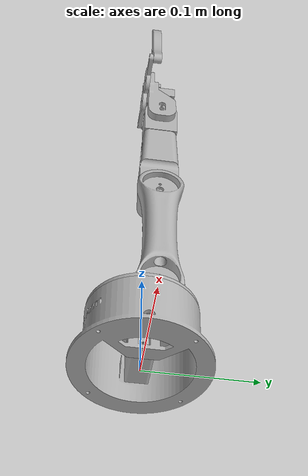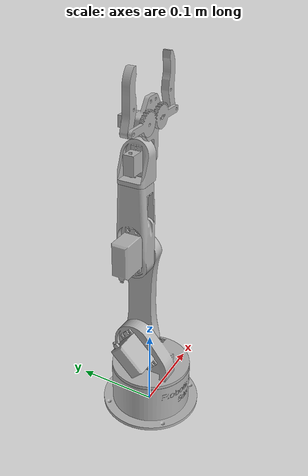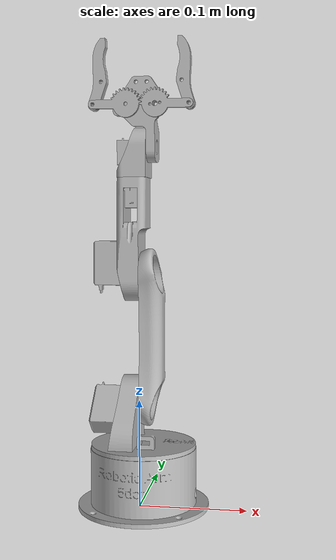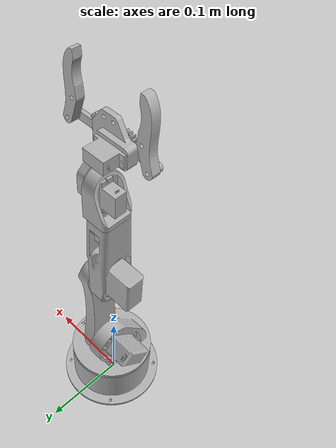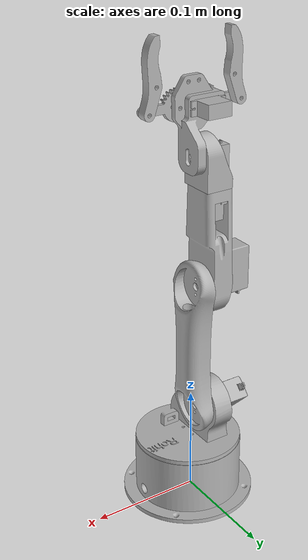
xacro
<?xml version="1.0" ?>
<robot name="arm_5dof" xmlns:xacro="http://www.ros.org/wiki/xacro">

<xacro:include filename="$(find arm_5dof_description)/urdf/materials.xacro" />
<xacro:include filename="$(find arm_5dof_description)/urdf/arm_5dof.trans" />
<xacro:include filename="$(find arm_5dof_description)/urdf/arm_5dof.gazebo" />
<link name="base_link">
  <inertial>
    <origin xyz="0.003838009810151215 0.0004461779457259607 0.02286877876994561" rpy="0 0 0"/>
    <mass value="0.7522188043041829"/>
    <inertia ixx="0.001001" iyy="0.00108" izz="0.001629" ixy="0.0" iyz="-1e-06" ixz="3.1e-05"/>
  </inertial>
  <visual>
    <origin xyz="0 0 0" rpy="0 0 0"/>
    <geometry>
      <mesh filename="package://arm_5dof_description/meshes/base_link.stl" scale="0.001 0.001 0.001"/>
    </geometry>
    <material name="silver"/>
  </visual>
  <collision>
    <origin xyz="0 0 0" rpy="0 0 0"/>
    <geometry>
      <mesh filename="package://arm_5dof_description/meshes/base_link.stl" scale="0.001 0.001 0.001"/>
    </geometry>
  </collision>
</link>

<link name="waist_1">
  <inertial>
    <origin xyz="-0.006392051753752244 0.001401748909597569 0.01727759625271507" rpy="0 0 0"/>
    <mass value="0.5354437528567239"/>
    <inertia ixx="0.000458" iyy="0.000356" izz="0.000432" ixy="5e-06" iyz="-4.9e-05" ixz="4.1e-05"/>
  </inertial>
  <visual>
    <origin xyz="-0.003713 -0.000323 -0.056611" rpy="0 0 0"/>
    <geometry>
      <mesh filename="package://arm_5dof_description/meshes/waist_1.stl" scale="0.001 0.001 0.001"/>
    </geometry>
    <material name="silver"/>
  </visual>
  <collision>
    <origin xyz="-0.003713 -0.000323 -0.056611" rpy="0 0 0"/>
    <geometry>
      <mesh filename="package://arm_5dof_description/meshes/waist_1.stl" scale="0.001 0.001 0.001"/>
    </geometry>
  </collision>
</link>

<link name="arm1_1">
  <inertial>
    <origin xyz="0.007777186996678871 7.774960774779502e-06 0.06126573841870464" rpy="0 0 0"/>
    <mass value="0.5212036434465369"/>
    <inertia ixx="0.000993" iyy="0.000951" izz="7.6e-05" ixy="0.0" iyz="-0.0" ixz="-2e-06"/>
  </inertial>
  <visual>
    <origin xyz="0.000287 -0.014242 -0.096887" rpy="0 0 0"/>
    <geometry>
      <mesh filename="package://arm_5dof_description/meshes/arm1_1.stl" scale="0.001 0.001 0.001"/>
    </geometry>
    <material name="silver"/>
  </visual>
  <collision>
    <origin xyz="0.000287 -0.014242 -0.096887" rpy="0 0 0"/>
    <geometry>
      <mesh filename="package://arm_5dof_description/meshes/arm1_1.stl" scale="0.001 0.001 0.001"/>
    </geometry>
  </collision>
</link>

<link name="arm2_1">
  <inertial>
    <origin xyz="-0.0074056876684373924 -2.2168026232168708e-05 0.03928210706367469" rpy="0 0 0"/>
    <mass value="0.3945467908121779"/>
    <inertia ixx="0.000457" iyy="0.000429" izz="7.3e-05" ixy="-0.0" iyz="1e-06" ixz="2e-06"/>
  </inertial>
  <visual>
    <origin xyz="0.000287 -0.014242 -0.216887" rpy="0 0 0"/>
    <geometry>
      <mesh filename="package://arm_5dof_description/meshes/arm2_1.stl" scale="0.001 0.001 0.001"/>
    </geometry>
    <material name="silver"/>
  </visual>
  <collision>
    <origin xyz="0.000287 -0.014242 -0.216887" rpy="0 0 0"/>
    <geometry>
      <mesh filename="package://arm_5dof_description/meshes/arm2_1.stl" scale="0.001 0.001 0.001"/>
    </geometry>
  </collision>
</link>

<link name="arm3_1">
  <inertial>
    <origin xyz="0.005266858431944335 -0.005042877072588029 0.01784090117232645" rpy="0 0 0"/>
    <mass value="0.12951657013229365"/>
    <inertia ixx="3.9e-05" iyy="3.1e-05" izz="2.1e-05" ixy="-0.0" iyz="-0.0" ixz="-5e-06"/>
  </inertial>
  <visual>
    <origin xyz="0.007787 -0.019542 -0.306637" rpy="0 0 0"/>
    <geometry>
      <mesh filename="package://arm_5dof_description/meshes/arm3_1.stl" scale="0.001 0.001 0.001"/>
    </geometry>
    <material name="silver"/>
  </visual>
  <collision>
    <origin xyz="0.007787 -0.019542 -0.306637" rpy="0 0 0"/>
    <geometry>
      <mesh filename="package://arm_5dof_description/meshes/arm3_1.stl" scale="0.001 0.001 0.001"/>
    </geometry>
  </collision>
</link>

<link name="gripper1_1">
  <inertial>
    <origin xyz="0.004578043352201293 0.003949278321660978 0.026923966453247516" rpy="0 0 0"/>
    <mass value="0.04237033350998682"/>
    <inertia ixx="1.3e-05" iyy="1.3e-05" izz="1e-06" ixy="0.0" iyz="0.0" ixz="-1e-06"/>
  </inertial>
  <visual>
    <origin xyz="0.042429 -0.000102 -0.372478" rpy="0 0 0"/>
    <geometry>
      <mesh filename="package://arm_5dof_description/meshes/gripper1_1.stl" scale="0.001 0.001 0.001"/>
    </geometry>
    <material name="silver"/>
  </visual>
  <collision>
    <origin xyz="0.042429 -0.000102 -0.372478" rpy="0 0 0"/>
    <geometry>
      <mesh filename="package://arm_5dof_description/meshes/gripper1_1.stl" scale="0.001 0.001 0.001"/>
    </geometry>
  </collision>
</link>

<link name="gripper2_1">
  <inertial>
    <origin xyz="-0.004117256812935996 0.003945625879510171 0.026999145762990784" rpy="0 0 0"/>
    <mass value="0.042370329631280915"/>
    <inertia ixx="1.3e-05" iyy="1.3e-05" izz="1e-06" ixy="-0.0" iyz="0.0" ixz="1e-06"/>
  </inertial>
  <visual>
    <origin xyz="-0.045971 -0.000138 -0.372478" rpy="0 0 0"/>
    <geometry>
      <mesh filename="package://arm_5dof_description/meshes/gripper2_1.stl" scale="0.001 0.001 0.001"/>
    </geometry>
    <material name="silver"/>
  </visual>
  <collision>
    <origin xyz="-0.045971 -0.000138 -0.372478" rpy="0 0 0"/>
    <geometry>
      <mesh filename="package://arm_5dof_description/meshes/gripper2_1.stl" scale="0.001 0.001 0.001"/>
    </geometry>
  </collision>
</link>

<link name="gripper_base_1">
  <inertial>
    <origin xyz="-0.0019741960439591272 -0.006082068799121706 0.023484597423749975" rpy="0 0 0"/>
    <mass value="0.12341306540761511"/>
    <inertia ixx="5.7e-05" iyy="6.3e-05" izz="2e-05" ixy="-3e-06" iyz="1.1e-05" ixz="1.1e-05"/>
  </inertial>
  <visual>
    <origin xyz="-0.006215 -0.014548 -0.334637" rpy="0 0 0"/>
    <geometry>
      <mesh filename="package://arm_5dof_description/meshes/gripper_base_1.stl" scale="0.001 0.001 0.001"/>
    </geometry>
    <material name="silver"/>
  </visual>
  <collision>
    <origin xyz="-0.006215 -0.014548 -0.334637" rpy="0 0 0"/>
    <geometry>
      <mesh filename="package://arm_5dof_description/meshes/gripper_base_1.stl" scale="0.001 0.001 0.001"/>
    </geometry>
  </collision>
</link>

<link name="gear1_1">
  <inertial>
    <origin xyz="-0.00557822139075125 -0.0020086168818973663 0.0005788433778717295" rpy="0 0 0"/>
    <mass value="0.020736163200801024"/>
    <inertia ixx="1e-06" iyy="4e-06" izz="3e-06" ixy="-0.0" iyz="0.0" ixz="-0.0"/>
  </inertial>
  <visual>
    <origin xyz="0.011679 -0.000114 -0.372478" rpy="0 0 0"/>
    <geometry>
      <mesh filename="package://arm_5dof_description/meshes/gear1_1.stl" scale="0.001 0.001 0.001"/>
    </geometry>
    <material name="silver"/>
  </visual>
  <collision>
    <origin xyz="0.011679 -0.000114 -0.372478" rpy="0 0 0"/>
    <geometry>
      <mesh filename="package://arm_5dof_description/meshes/gear1_1.stl" scale="0.001 0.001 0.001"/>
    </geometry>
  </collision>
</link>

<link name="gear2_1">
  <inertial>
    <origin xyz="0.005666401849291939 -0.0020039311247486507 0.0005815410560265355" rpy="0 0 0"/>
    <mass value="0.020141547493382938"/>
    <inertia ixx="1e-06" iyy="4e-06" izz="3e-06" ixy="-0.0" iyz="0.0" ixz="0.0"/>
  </inertial>
  <visual>
    <origin xyz="-0.015221 -0.000125 -0.372478" rpy="0 0 0"/>
    <geometry>
      <mesh filename="package://arm_5dof_description/meshes/gear2_1.stl" scale="0.001 0.001 0.001"/>
    </geometry>
    <material name="silver"/>
  </visual>
  <collision>
    <origin xyz="-0.015221 -0.000125 -0.372478" rpy="0 0 0"/>
    <geometry>
      <mesh filename="package://arm_5dof_description/meshes/gear2_1.stl" scale="0.001 0.001 0.001"/>
    </geometry>
  </collision>
</link>

<link name="sg90_1_1">
  <inertial>
    <origin xyz="-1.350399744179387e-07 0.013371543082314133 -0.005539058375771733" rpy="0 0 0"/>
    <mass value="0.1678780953403671"/>
    <inertia ixx="1.7e-05" iyy="1.1e-05" izz="1e-05" ixy="-0.0" iyz="1e-06" ixz="0.0"/>
  </inertial>
  <visual>
    <origin xyz="0.007787 -0.000442 -0.296637" rpy="0 0 0"/>
    <geometry>
      <mesh filename="package://arm_5dof_description/meshes/sg90_1_1.stl" scale="0.001 0.001 0.001"/>
    </geometry>
    <material name="silver"/>
  </visual>
  <collision>
    <origin xyz="0.007787 -0.000442 -0.296637" rpy="0 0 0"/>
    <geometry>
      <mesh filename="package://arm_5dof_description/meshes/sg90_1_1.stl" scale="0.001 0.001 0.001"/>
    </geometry>
  </collision>
</link>

<link name="sg90_1_2">
  <inertial>
    <origin xyz="-0.0055394403309275515 -1.861104244056666e-06 0.014228730965407776" rpy="0 0 0"/>
    <mass value="0.1678780953403671"/>
    <inertia ixx="1e-05" iyy="1.7e-05" izz="1.1e-05" ixy="-0.0" iyz="-0.0" ixz="-1e-06"/>
  </inertial>
  <visual>
    <origin xyz="0.004285 -0.014543 -0.315837" rpy="0 0 0"/>
    <geometry>
      <mesh filename="package://arm_5dof_description/meshes/sg90_1_2.stl" scale="0.001 0.001 0.001"/>
    </geometry>
    <material name="silver"/>
  </visual>
  <collision>
    <origin xyz="0.004285 -0.014543 -0.315837" rpy="0 0 0"/>
    <geometry>
      <mesh filename="package://arm_5dof_description/meshes/sg90_1_2.stl" scale="0.001 0.001 0.001"/>
    </geometry>
  </collision>
</link>

<link name="sg90_1_3">
  <inertial>
    <origin xyz="0.013368816698144156 0.005544542448326065 6.180991207238584e-05" rpy="0 0 0"/>
    <mass value="0.1678780953403671"/>
    <inertia ixx="1.1e-05" iyy="1e-05" izz="1.7e-05" ixy="-1e-06" iyz="-0.0" ixz="-0.0"/>
  </inertial>
  <visual>
    <origin xyz="0.020483 -0.01061 -0.372596" rpy="0 0 0"/>
    <geometry>
      <mesh filename="package://arm_5dof_description/meshes/sg90_1_3.stl" scale="0.001 0.001 0.001"/>
    </geometry>
    <material name="silver"/>
  </visual>
  <collision>
    <origin xyz="0.020483 -0.01061 -0.372596" rpy="0 0 0"/>
    <geometry>
      <mesh filename="package://arm_5dof_description/meshes/sg90_1_3.stl" scale="0.001 0.001 0.001"/>
    </geometry>
  </collision>
</link>

<link name="mg996r_1_1">
  <inertial>
    <origin xyz="-0.023509816880881013 0.005000482971852852 -0.010842185562066939" rpy="0 0 0"/>
    <mass value="0.7977944565420556"/>
    <inertia ixx="0.000138" iyy="0.000226" izz="0.000142" ixy="-0.0" iyz="-0.0" ixz="-6e-06"/>
  </inertial>
  <visual>
    <origin xyz="-0.017463 0.004677 -0.038611" rpy="0 0 0"/>
    <geometry>
      <mesh filename="package://arm_5dof_description/meshes/mg996r_1_1.stl" scale="0.001 0.001 0.001"/>
    </geometry>
    <material name="silver"/>
  </visual>
  <collision>
    <origin xyz="-0.017463 0.004677 -0.038611" rpy="0 0 0"/>
    <geometry>
      <mesh filename="package://arm_5dof_description/meshes/mg996r_1_1.stl" scale="0.001 0.001 0.001"/>
    </geometry>
  </collision>
</link>

<link name="mg996r_1_2">
  <inertial>
    <origin xyz="-0.010842080696952678 0.013781838936363068 0.02085308595696858" rpy="0 0 0"/>
    <mass value="0.7977944565420556"/>
    <inertia ixx="0.000142" iyy="0.000182" izz="0.000182" ixy="-5e-06" iyz="-4.4e-05" ixz="-5e-06"/>
  </inertial>
  <visual>
    <origin xyz="0.014287 0.006441 -0.069133" rpy="0 0 0"/>
    <geometry>
      <mesh filename="package://arm_5dof_description/meshes/mg996r_1_2.stl" scale="0.001 0.001 0.001"/>
    </geometry>
    <material name="silver"/>
  </visual>
  <collision>
    <origin xyz="0.014287 0.006441 -0.069133" rpy="0 0 0"/>
    <geometry>
      <mesh filename="package://arm_5dof_description/meshes/mg996r_1_2.stl" scale="0.001 0.001 0.001"/>
    </geometry>
  </collision>
</link>

<link name="mg996r_1_3">
  <inertial>
    <origin xyz="-0.010842088207209402 0.004999978626369209 0.023509974899488584" rpy="0 0 0"/>
    <mass value="0.7977944565420556"/>
    <inertia ixx="0.000142" iyy="0.000226" izz="0.000138" ixy="-0.0" iyz="0.0" ixz="6e-06"/>
  </inertial>
  <visual>
    <origin xyz="0.013287 -0.009242 -0.203137" rpy="0 0 0"/>
    <geometry>
      <mesh filename="package://arm_5dof_description/meshes/mg996r_1_3.stl" scale="0.001 0.001 0.001"/>
    </geometry>
    <material name="silver"/>
  </visual>
  <collision>
    <origin xyz="0.013287 -0.009242 -0.203137" rpy="0 0 0"/>
    <geometry>
      <mesh filename="package://arm_5dof_description/meshes/mg996r_1_3.stl" scale="0.001 0.001 0.001"/>
    </geometry>
  </collision>
</link>

<joint name="joint1" type="revolute">
  <origin xyz="0.003713 0.000323 0.056611" rpy="0 0 0"/>
  <parent link="base_link"/>
  <child link="waist_1"/>
  <axis xyz="0.0 -0.0 1.0"/>
  <limit upper="1.570796" lower="-1.570796" effort="100" velocity="100"/>
</joint>

<joint name="joint2" type="revolute">
  <origin xyz="-0.004 0.013919 0.040276" rpy="0 0 0"/>
  <parent link="waist_1"/>
  <child link="arm1_1"/>
  <axis xyz="1.0 0.0 0.0"/>
  <limit upper="1.570796" lower="-1.570796" effort="100" velocity="100"/>
</joint>

<joint name="joint3" type="revolute">
  <origin xyz="0.0 0.0 0.12" rpy="0 0 0"/>
  <parent link="arm1_1"/>
  <child link="arm2_1"/>
  <axis xyz="-1.0 -0.0 -0.0"/>
  <limit upper="1.570796" lower="-1.570796" effort="100" velocity="100"/>
</joint>

<joint name="joint4" type="revolute">
  <origin xyz="-0.0075 0.0053 0.08975" rpy="0 0 0"/>
  <parent link="arm2_1"/>
  <child link="arm3_1"/>
  <axis xyz="-0.0 0.0 1.0"/>
  <limit upper="1.570796" lower="-1.570796" effort="100" velocity="100"/>
</joint>

<joint name="joint5" type="revolute">
  <origin xyz="0.014002 -0.004994 0.028" rpy="0 0 0"/>
  <parent link="arm3_1"/>
  <child link="gripper_base_1"/>
  <axis xyz="1.0 0.000412 0.0"/>
  <limit upper="1.570796" lower="-1.570796" effort="100" velocity="100"/>
</joint>

<joint name="joint6" type="revolute">
  <origin xyz="-0.017894 -0.014434 0.037841" rpy="0 0 0"/>
  <parent link="gripper_base_1"/>
  <child link="gear1_1"/>
  <axis xyz="0.000412 -0.999937 -0.011235"/>
  <limit upper="0.0" lower="-1.570796" effort="100" velocity="100"/>
</joint>

<joint name="joint7" type="continuous">
  <origin xyz="0.009006 -0.014423 0.037841" rpy="0 0 0"/>
  <parent link="gripper_base_1"/>
  <child link="gear2_1"/>
  <axis xyz="-0.000412 0.999937 0.011235"/>
        <mimic joint="joint6" multiplier="1" offset="0" />
</joint>
<joint name="keep1" type="continuous">
  <origin xyz="-0.03075 -1.2e-05 0.0" rpy="0 0 0"/>
  <parent link="gear1_1"/>
  <child link="gripper1_1"/>
  <axis xyz="0.000412 -0.999937 -0.011235"/>
  <mimic joint="joint6" multiplier="-1" offset="0" />
</joint>

<joint name="keep2" type="continuous">
  <origin xyz="0.03075 1.3e-05 0.0" rpy="0 0 0"/>
  <parent link="gear2_1"/>
  <child link="gripper2_1"/>
  <axis xyz="0.000412 -0.999937 -0.011235"/>
        <mimic joint="joint6" multiplier="1" offset="0" />
</joint>
<joint name="Rigid 30" type="fixed">
  <origin xyz="-0.0075 -0.0138 0.07975" rpy="0 0 0"/>
  <parent link="arm2_1"/>
  <child link="sg90_1_1"/>
</joint>

<joint name="Rigid 31" type="fixed">
  <origin xyz="0.003502 -0.004999 0.0092" rpy="0 0 0"/>
  <parent link="arm3_1"/>
  <child link="sg90_1_2"/>
</joint>

<joint name="Rigid 32" type="fixed">
  <origin xyz="-0.026698 -0.003938 0.037959" rpy="0 0 0"/>
  <parent link="gripper_base_1"/>
  <child link="sg90_1_3"/>
</joint>

<joint name="Rigid 33" type="fixed">
  <origin xyz="0.017463 -0.004677 0.038611" rpy="0 0 0"/>
  <parent link="base_link"/>
  <child link="mg996r_1_1"/>
</joint>

<joint name="Rigid 34" type="fixed">
  <origin xyz="-0.018 -0.006764 0.012522" rpy="0 0 0"/>
  <parent link="waist_1"/>
  <child link="mg996r_1_2"/>
</joint>

<joint name="Rigid 35" type="fixed">
  <origin xyz="-0.013 -0.005 -0.01375" rpy="0 0 0"/>
  <parent link="arm2_1"/>
  <child link="mg996r_1_3"/>
</joint>

</robot>

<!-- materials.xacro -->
<robot name="arm_5dof" xmlns:xacro="http://www.ros.org/wiki/xacro" >

<material name="silver">
  <color rgba="0.700 0.700 0.700 1.000"/>
</material>

</robot>

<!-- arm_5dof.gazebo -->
<robot name="arm_5dof" xmlns:xacro="http://www.ros.org/wiki/xacro" >

<xacro:property name="body_color" value="Gazebo/Silver" />

<gazebo>
  <plugin name="control" filename="libgazebo_ros_control.so"/>
</gazebo>
<gazebo reference="base_link">
  <material>${body_color}</material>
  <mu1>0.2</mu1>
  <mu2>0.2</mu2>
  <selfCollide>true</selfCollide>
  <gravity>true</gravity>
</gazebo>

<gazebo reference="waist_1">
  <material>${body_color}</material>
  <mu1>0.2</mu1>
  <mu2>0.2</mu2>
  <selfCollide>true</selfCollide>
</gazebo>

<gazebo reference="arm1_1">
  <material>${body_color}</material>
  <mu1>0.2</mu1>
  <mu2>0.2</mu2>
  <selfCollide>true</selfCollide>
</gazebo>

<gazebo reference="arm2_1">
  <material>${body_color}</material>
  <mu1>0.2</mu1>
  <mu2>0.2</mu2>
  <selfCollide>true</selfCollide>
</gazebo>

<gazebo reference="arm3_1">
  <material>${body_color}</material>
  <mu1>0.2</mu1>
  <mu2>0.2</mu2>
  <selfCollide>true</selfCollide>
</gazebo>

<gazebo reference="gripper1_1">
  <material>${body_color}</material>
  <mu1>0.2</mu1>
  <mu2>0.2</mu2>
  <selfCollide>true</selfCollide>
</gazebo>

<gazebo reference="gripper2_1">
  <material>${body_color}</material>
  <mu1>0.2</mu1>
  <mu2>0.2</mu2>
  <selfCollide>true</selfCollide>
</gazebo>

<gazebo reference="gripper_base_1">
  <material>${body_color}</material>
  <mu1>0.2</mu1>
  <mu2>0.2</mu2>
  <selfCollide>true</selfCollide>
</gazebo>

<gazebo reference="gear1_1">
  <material>${body_color}</material>
  <mu1>0.2</mu1>
  <mu2>0.2</mu2>
  <selfCollide>true</selfCollide>
</gazebo>

<gazebo reference="gear2_1">
  <material>${body_color}</material>
  <mu1>0.2</mu1>
  <mu2>0.2</mu2>
  <selfCollide>true</selfCollide>
</gazebo>

<gazebo reference="sg90_1_1">
  <material>${body_color}</material>
  <mu1>0.2</mu1>
  <mu2>0.2</mu2>
  <selfCollide>true</selfCollide>
</gazebo>

<gazebo reference="sg90_1_2">
  <material>${body_color}</material>
  <mu1>0.2</mu1>
  <mu2>0.2</mu2>
  <selfCollide>true</selfCollide>
</gazebo>

<gazebo reference="sg90_1_3">
  <material>${body_color}</material>
  <mu1>0.2</mu1>
  <mu2>0.2</mu2>
  <selfCollide>true</selfCollide>
</gazebo>

<gazebo reference="mg996r_1_1">
  <material>${body_color}</material>
  <mu1>0.2</mu1>
  <mu2>0.2</mu2>
  <selfCollide>true</selfCollide>
</gazebo>

<gazebo reference="mg996r_1_2">
  <material>${body_color}</material>
  <mu1>0.2</mu1>
  <mu2>0.2</mu2>
  <selfCollide>true</selfCollide>
</gazebo>

<gazebo reference="mg996r_1_3">
  <material>${body_color}</material>
  <mu1>0.2</mu1>
  <mu2>0.2</mu2>
  <selfCollide>true</selfCollide>
</gazebo>

</robot>
